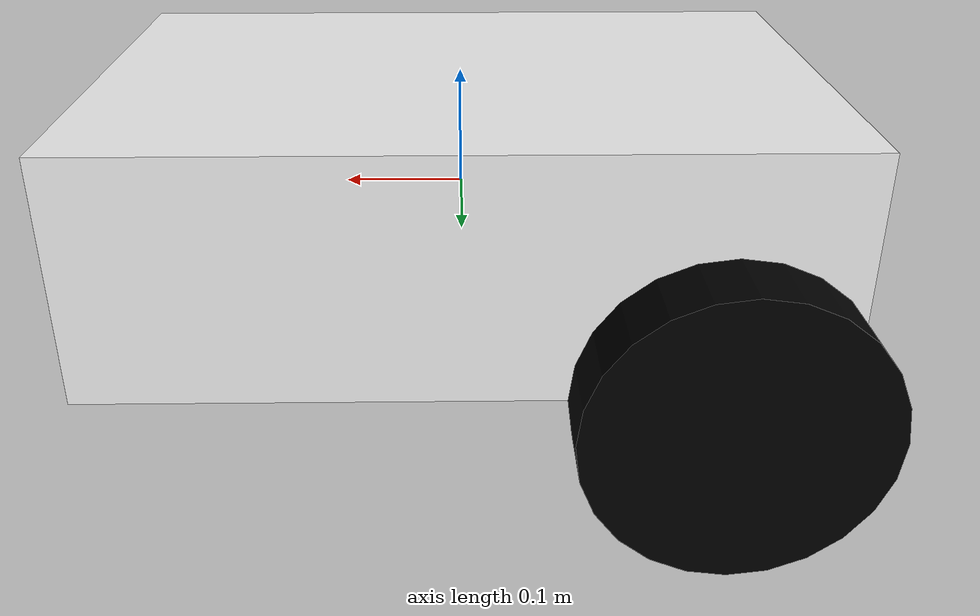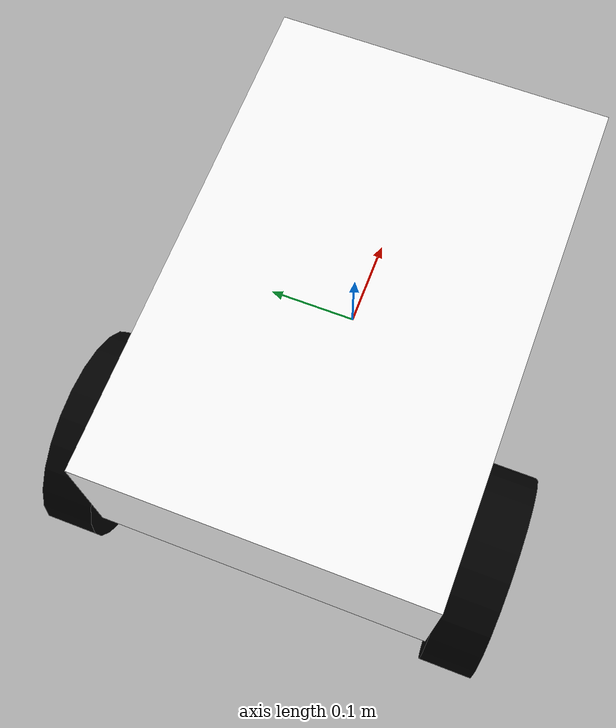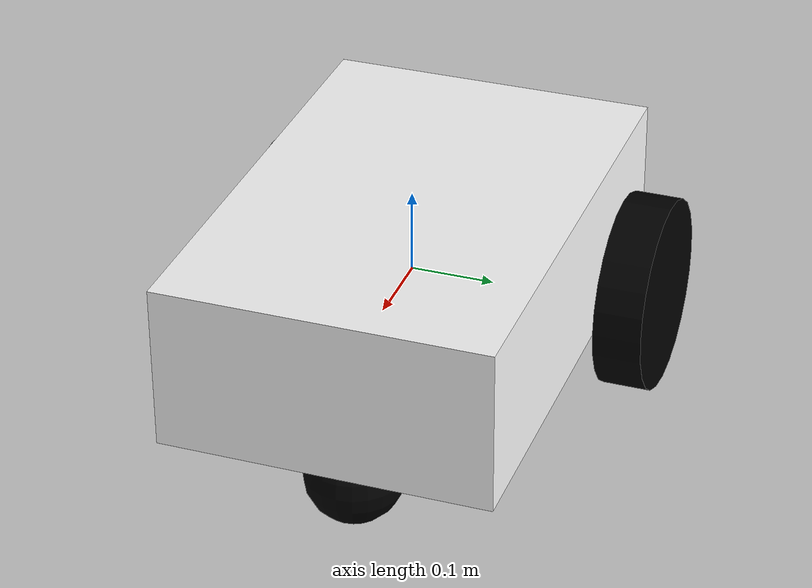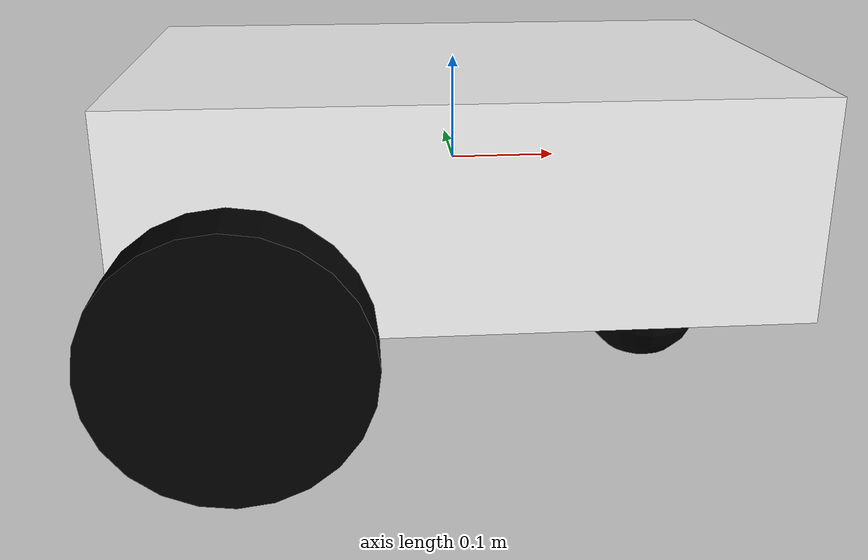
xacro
<?xml version="1.0"?>

<robot name="basic_robot" xmlns:xacro="http://www.ros.org/wiki/xacro">

    <material name="white">
        <color rgba="1.0 1.0 1.0 1.0"/>
    </material>

    <material name="black">
        <color rgba="0.0 0.0 0.0 1.0"/>
    </material>

    <link name="base_link">
        <visual>
            <origin xyz="0.0 0.0 0.0" rpy="0.0 0.0 0.0"/>
            <geometry>
                <box size="0.6 0.4 0.2"/>
            </geometry>
            <material name="white"/>
        </visual>
        <collision>
            <origin xyz="0.0 0.0 0.0" rpy="0.0 0.0 0.0"/>
            <geometry>
                <box size="0.6 0.4 0.2"/>
            </geometry>
        </collision>
        <xacro:inertial_box mass="0.5" x="0.6" y="0.4" z="0.2" xyz="0 0 0" rpy="0 0 0"/>
    </link>

    <xacro:macro name="wheel_link" params="prefix">
        <link name="${prefix}_wheel">
            <visual>
                <origin xyz="0.0 0.0 0.0" rpy="${pi/2} 0.0 0.0"/>
                <geometry>
                    <cylinder radius="0.12" length="0.06"/>
                </geometry>
                <material name="black"/>
            </visual>
            <collision>
                <origin xyz="0.0 0.0 0.0" rpy="${pi/2} 0.0 0.0"/>
                <geometry>
                    <cylinder radius="0.12" length="0.06"/>
                </geometry>
            </collision>
            <xacro:inertial_cylinder mass="0.2" radius="0.12" length="0.06" xyz="0 0 0" rpy="${pi/2} 0 0"/>
        </link>
    </xacro:macro>

    <xacro:macro name="wheel_joint" params="prefix y">
        <joint name="${prefix}_joint" type="continuous">
            <origin xyz="-0.2 ${y} -0.1" rpy="0.0 0.0 0.0"/>
            <parent link="base_link"/>
            <child link="${prefix}_wheel"/>
            <axis xyz="0.0 1.0 0.0"/>
        </joint>
    </xacro:macro>

    <xacro:wheel_link prefix="right"/>
    <xacro:wheel_link prefix="left"/>

    <xacro:wheel_joint prefix="right" y="0.23"/>
    <xacro:wheel_joint prefix="left" y="-0.23"/>

    <link name="caster_wheel">
        <visual>
            <origin xyz="0.0 0.0 0.0" rpy="0.0 0.0 0.0"/>
            <geometry>
                <sphere radius="0.06"/>
            </geometry>
            <material name="black"/>
        </visual>
        <collision>
            <origin xyz="0.0 0.0 0.0" rpy="0.0 0.0 0.0"/>
            <geometry>
                <sphere radius="0.06"/>
            </geometry>
        </collision>
        <xacro:inertial_sphere mass="0.1" radius="0.06" xyz="0 0 0" rpy="0 0 0"/>
    </link>

    <joint name="caster_joint" type="fixed">
        <origin xyz="0.2 0.0 -0.16" rpy="0.0 0.0 0.0"/>
        <parent link="base_link"/>
        <child link="caster_wheel"/>
    </joint>

</robot>
